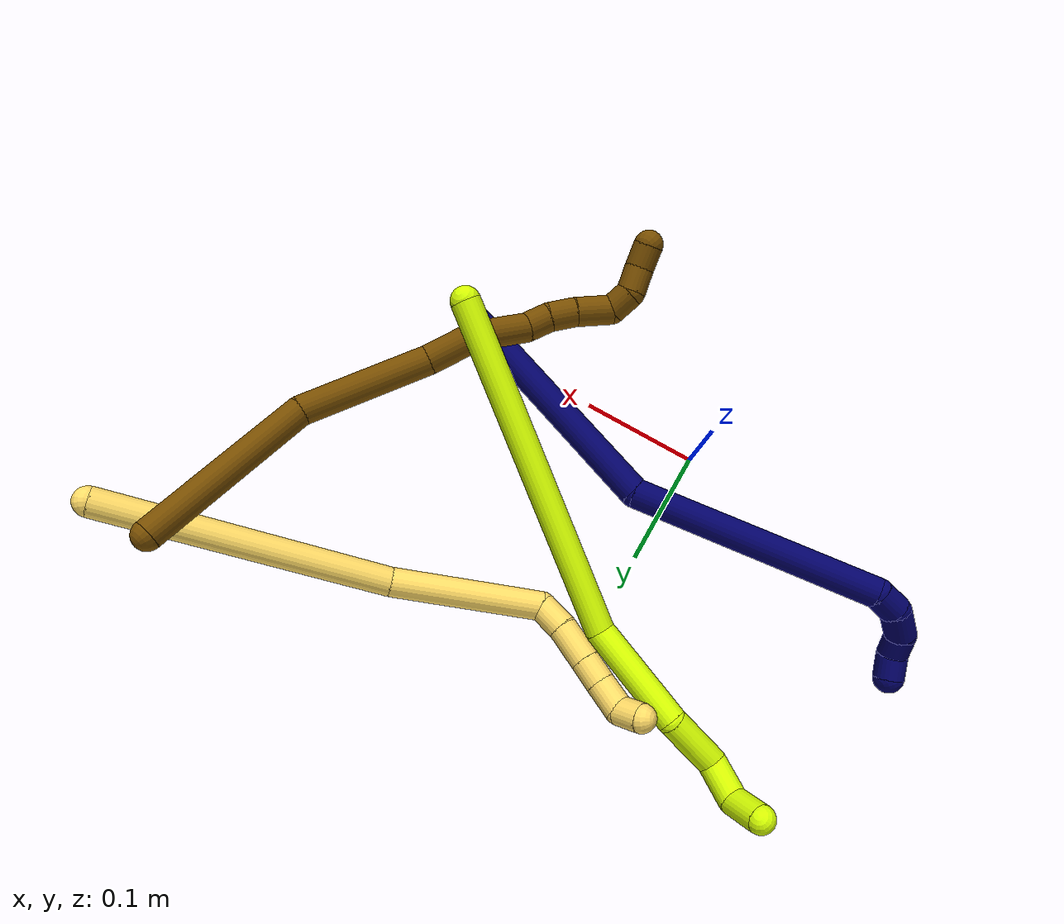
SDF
<sdf version="1.7">
 <world name="default">
  <model name="5">
   <static>0</static>
   <link name="5">
    <collision name="collision-cylinder-e_1_1_4">
     <pose>-0.061219 0.068402 -0.078086 -2.42221 -0.532835 1.25554</pose>
     <geometry><cylinder><radius>0.0125</radius><length>0.241032</length></cylinder></geometry>
     <surface>
      <friction><ode><mu>1.16</mu><mu2>1.16</mu2><slip1>0</slip1><slip2>0</slip2></ode></friction>
      <contact><ode><kp>1e+06</kp><kd>1</kd><max_vel>0</max_vel><min_depth>0.001</min_depth></ode></contact>
     </surface>
    </collision>
    <visual name="visual-cylinder-e_1_1_4">
     <pose>-0.061219 0.068402 -0.078086 -2.42221 -0.532835 1.25554</pose>
     <geometry><cylinder><radius>0.0125</radius><length>0.241032</length></cylinder></geometry>
     <material><ambient>1 0.858824 0.4 1</ambient></material>
    </visual>
    <collision name="collision-cylinder-e_2_4_5">
     <pose>-0.146165 0.168975 -0.206809 -2.5756 -0.376612 1.16019</pose>
     <geometry><cylinder><radius>0.0125</radius><length>0.129026</length></cylinder></geometry>
     <surface>
      <friction><ode><mu>1.16</mu><mu2>1.16</mu2><slip1>0</slip1><slip2>0</slip2></ode></friction>
      <contact><ode><kp>1e+06</kp><kd>1</kd><max_vel>0</max_vel><min_depth>0.001</min_depth></ode></contact>
     </surface>
    </collision>
    <visual name="visual-cylinder-e_2_4_5">
     <pose>-0.146165 0.168975 -0.206809 -2.5756 -0.376612 1.16019</pose>
     <geometry><cylinder><radius>0.0125</radius><length>0.129026</length></cylinder></geometry>
     <material><ambient>1 0.858824 0.4 1</ambient></material>
    </visual>
    <collision name="collision-cylinder-e_3_5_6">
     <pose>-0.178456 0.198989 -0.266931 2.91805 -0.721868 -2.56356</pose>
     <geometry><cylinder><radius>0.0125</radius><length>0.025923</length></cylinder></geometry>
     <surface>
      <friction><ode><mu>1.16</mu><mu2>1.16</mu2><slip1>0</slip1><slip2>0</slip2></ode></friction>
      <contact><ode><kp>1e+06</kp><kd>1</kd><max_vel>0</max_vel><min_depth>0.001</min_depth></ode></contact>
     </surface>
    </collision>
    <visual name="visual-cylinder-e_3_5_6">
     <pose>-0.178456 0.198989 -0.266931 2.91805 -0.721868 -2.56356</pose>
     <geometry><cylinder><radius>0.0125</radius><length>0.025923</length></cylinder></geometry>
     <material><ambient>1 0.858824 0.4 1</ambient></material>
    </visual>
    <collision name="collision-cylinder-e_4_6_7">
     <pose>-0.199119 0.192337 -0.286864 2.73515 -0.816352 -2.25225</pose>
     <geometry><cylinder><radius>0.0125</radius><length>0.033209</length></cylinder></geometry>
     <surface>
      <friction><ode><mu>1.16</mu><mu2>1.16</mu2><slip1>0</slip1><slip2>0</slip2></ode></friction>
      <contact><ode><kp>1e+06</kp><kd>1</kd><max_vel>0</max_vel><min_depth>0.001</min_depth></ode></contact>
     </surface>
    </collision>
    <visual name="visual-cylinder-e_4_6_7">
     <pose>-0.199119 0.192337 -0.286864 2.73515 -0.816352 -2.25225</pose>
     <geometry><cylinder><radius>0.0125</radius><length>0.033209</length></cylinder></geometry>
     <material><ambient>1 0.858824 0.4 1</ambient></material>
    </visual>
    <collision name="collision-cylinder-e_5_7_8">
     <pose>-0.219642 0.184731 -0.304443 2.73056 -0.825023 -2.2525</pose>
     <geometry><cylinder><radius>0.0125</radius><length>0.022935</length></cylinder></geometry>
     <surface>
      <friction><ode><mu>1.16</mu><mu2>1.16</mu2><slip1>0</slip1><slip2>0</slip2></ode></friction>
      <contact><ode><kp>1e+06</kp><kd>1</kd><max_vel>0</max_vel><min_depth>0.001</min_depth></ode></contact>
     </surface>
    </collision>
    <visual name="visual-cylinder-e_5_7_8">
     <pose>-0.219642 0.184731 -0.304443 2.73056 -0.825023 -2.2525</pose>
     <geometry><cylinder><radius>0.0125</radius><length>0.022935</length></cylinder></geometry>
     <material><ambient>1 0.858824 0.4 1</ambient></material>
    </visual>
    <collision name="collision-cylinder-e_6_8_9">
     <pose>-0.236789 0.176961 -0.320517 2.66105 -0.713183 -1.97805</pose>
     <geometry><cylinder><radius>0.0125</radius><length>0.026665</length></cylinder></geometry>
     <surface>
      <friction><ode><mu>1.16</mu><mu2>1.16</mu2><slip1>0</slip1><slip2>0</slip2></ode></friction>
      <contact><ode><kp>1e+06</kp><kd>1</kd><max_vel>0</max_vel><min_depth>0.001</min_depth></ode></contact>
     </surface>
    </collision>
    <visual name="visual-cylinder-e_6_8_9">
     <pose>-0.236789 0.176961 -0.320517 2.66105 -0.713183 -1.97805</pose>
     <geometry><cylinder><radius>0.0125</radius><length>0.026665</length></cylinder></geometry>
     <material><ambient>1 0.858824 0.4 1</ambient></material>
    </visual>
    <collision name="collision-cylinder-e_7_9_2">
     <pose>-0.246569 0.170126 -0.339784 2.9341 -0.099879 -0.895104</pose>
     <geometry><cylinder><radius>0.0125</radius><length>0.021209</length></cylinder></geometry>
     <surface>
      <friction><ode><mu>1.16</mu><mu2>1.16</mu2><slip1>0</slip1><slip2>0</slip2></ode></friction>
      <contact><ode><kp>1e+06</kp><kd>1</kd><max_vel>0</max_vel><min_depth>0.001</min_depth></ode></contact>
     </surface>
    </collision>
    <visual name="visual-cylinder-e_7_9_2">
     <pose>-0.246569 0.170126 -0.339784 2.9341 -0.099879 -0.895104</pose>
     <geometry><cylinder><radius>0.0125</radius><length>0.021209</length></cylinder></geometry>
     <material><ambient>1 0.858824 0.4 1</ambient></material>
    </visual>
    <collision name="collision-sphere-2">
     <pose>-0.247627 0.167953 -0.350109 0 -0 0</pose>
     <geometry><sphere><radius>0.0125</radius></sphere></geometry>
     <surface>
      <friction><ode><mu>1.16</mu><mu2>1.16</mu2><slip1>0</slip1><slip2>0</slip2></ode></friction>
      <contact><ode><kp>1e+06</kp><kd>1</kd><max_vel>0</max_vel><min_depth>0.001</min_depth></ode></contact>
     </surface>
    </collision>
    <visual name="visual-sphere-2">
     <pose>-0.247627 0.167953 -0.350109 0 -0 0</pose>
     <geometry><sphere><radius>0.0125</radius></sphere></geometry>
     <material><ambient>1 0.858824 0.4 1</ambient></material>
    </visual>
    <collision name="collision-sphere-9">
     <pose>-0.245512 0.1723 -0.329458 0 -0 0</pose>
     <geometry><sphere><radius>0.0125</radius></sphere></geometry>
     <surface>
      <friction><ode><mu>1.16</mu><mu2>1.16</mu2><slip1>0</slip1><slip2>0</slip2></ode></friction>
      <contact><ode><kp>1e+06</kp><kd>1</kd><max_vel>0</max_vel><min_depth>0.001</min_depth></ode></contact>
     </surface>
    </collision>
    <visual name="visual-sphere-9">
     <pose>-0.245512 0.1723 -0.329458 0 -0 0</pose>
     <geometry><sphere><radius>0.0125</radius></sphere></geometry>
     <material><ambient>1 0.858824 0.4 1</ambient></material>
    </visual>
    <collision name="collision-sphere-4">
     <pose>-0.122439 0.136804 -0.156172 0 -0 0</pose>
     <geometry><sphere><radius>0.0125</radius></sphere></geometry>
     <surface>
      <friction><ode><mu>1.16</mu><mu2>1.16</mu2><slip1>0</slip1><slip2>0</slip2></ode></friction>
      <contact><ode><kp>1e+06</kp><kd>1</kd><max_vel>0</max_vel><min_depth>0.001</min_depth></ode></contact>
     </surface>
    </collision>
    <visual name="visual-sphere-4">
     <pose>-0.122439 0.136804 -0.156172 0 -0 0</pose>
     <geometry><sphere><radius>0.0125</radius></sphere></geometry>
     <material><ambient>1 0.858824 0.4 1</ambient></material>
    </visual>
    <collision name="collision-sphere-1">
     <geometry><sphere><radius>0.0125</radius></sphere></geometry>
     <surface>
      <friction><ode><mu>1.16</mu><mu2>1.16</mu2><slip1>0</slip1><slip2>0</slip2></ode></friction>
      <contact><ode><kp>1e+06</kp><kd>1</kd><max_vel>0</max_vel><min_depth>0.001</min_depth></ode></contact>
     </surface>
    </collision>
    <visual name="visual-sphere-1">
     <geometry><sphere><radius>0.0125</radius></sphere></geometry>
     <material><ambient>1 0.858824 0.4 1</ambient></material>
    </visual>
    <collision name="collision-sphere-8">
     <pose>-0.228066 0.181622 -0.311576 0 -0 0</pose>
     <geometry><sphere><radius>0.0125</radius></sphere></geometry>
     <surface>
      <friction><ode><mu>1.16</mu><mu2>1.16</mu2><slip1>0</slip1><slip2>0</slip2></ode></friction>
      <contact><ode><kp>1e+06</kp><kd>1</kd><max_vel>0</max_vel><min_depth>0.001</min_depth></ode></contact>
     </surface>
    </collision>
    <visual name="visual-sphere-8">
     <pose>-0.228066 0.181622 -0.311576 0 -0 0</pose>
     <geometry><sphere><radius>0.0125</radius></sphere></geometry>
     <material><ambient>1 0.858824 0.4 1</ambient></material>
    </visual>
    <collision name="collision-sphere-5">
     <pose>-0.169891 0.201146 -0.257445 0 -0 0</pose>
     <geometry><sphere><radius>0.0125</radius></sphere></geometry>
     <surface>
      <friction><ode><mu>1.16</mu><mu2>1.16</mu2><slip1>0</slip1><slip2>0</slip2></ode></friction>
      <contact><ode><kp>1e+06</kp><kd>1</kd><max_vel>0</max_vel><min_depth>0.001</min_depth></ode></contact>
     </surface>
    </collision>
    <visual name="visual-sphere-5">
     <pose>-0.169891 0.201146 -0.257445 0 -0 0</pose>
     <geometry><sphere><radius>0.0125</radius></sphere></geometry>
     <material><ambient>1 0.858824 0.4 1</ambient></material>
    </visual>
    <collision name="collision-sphere-6">
     <pose>-0.18702 0.196833 -0.276418 0 -0 0</pose>
     <geometry><sphere><radius>0.0125</radius></sphere></geometry>
     <surface>
      <friction><ode><mu>1.16</mu><mu2>1.16</mu2><slip1>0</slip1><slip2>0</slip2></ode></friction>
      <contact><ode><kp>1e+06</kp><kd>1</kd><max_vel>0</max_vel><min_depth>0.001</min_depth></ode></contact>
     </surface>
    </collision>
    <visual name="visual-sphere-6">
     <pose>-0.18702 0.196833 -0.276418 0 -0 0</pose>
     <geometry><sphere><radius>0.0125</radius></sphere></geometry>
     <material><ambient>1 0.858824 0.4 1</ambient></material>
    </visual>
    <collision name="collision-sphere-7">
     <pose>-0.211218 0.187841 -0.297309 0 -0 0</pose>
     <geometry><sphere><radius>0.0125</radius></sphere></geometry>
     <surface>
      <friction><ode><mu>1.16</mu><mu2>1.16</mu2><slip1>0</slip1><slip2>0</slip2></ode></friction>
      <contact><ode><kp>1e+06</kp><kd>1</kd><max_vel>0</max_vel><min_depth>0.001</min_depth></ode></contact>
     </surface>
    </collision>
    <visual name="visual-sphere-7">
     <pose>-0.211218 0.187841 -0.297309 0 -0 0</pose>
     <geometry><sphere><radius>0.0125</radius></sphere></geometry>
     <material><ambient>1 0.858824 0.4 1</ambient></material>
    </visual>
    <inertial>
     <pose>-0.122869 0.124798 -0.169374 0 -0 0</pose>
     <mass>0.5</mass>
     <inertia>
      <ixx>0.001472</ixx>
      <ixy>0</ixy>
      <ixz>0</ixz>
      <iyy>0.001205</iyy>
      <iyz>0</iyz>
      <izz>-0.00011</izz>
     </inertia>
    </inertial>
   </link>
   <pose>0.388501 0.286272 0.106545 -2.17553 -0.47658 -0.848256</pose>
  </model>
  <model name="7">
   <static>0</static>
   <link name="7">
    <collision name="collision-cylinder-e_1_1_4">
     <pose>-0.094679 0.036784 -0.013088 -1.91263 -1.17967 1.51802</pose>
     <geometry><cylinder><radius>0.0125</radius><length>0.204827</length></cylinder></geometry>
     <surface>
      <friction><ode><mu>1.16</mu><mu2>1.16</mu2><slip1>0</slip1><slip2>0</slip2></ode></friction>
      <contact><ode><kp>1e+06</kp><kd>1</kd><max_vel>0</max_vel><min_depth>0.001</min_depth></ode></contact>
     </surface>
    </collision>
    <visual name="visual-cylinder-e_1_1_4">
     <pose>-0.094679 0.036784 -0.013088 -1.91263 -1.17967 1.51802</pose>
     <geometry><cylinder><radius>0.0125</radius><length>0.204827</length></cylinder></geometry>
     <material><ambient>0.003922 0 0.403922 1</ambient></material>
    </visual>
    <collision name="collision-cylinder-e_2_4_5">
     <pose>-0.271727 0.099891 -0.08186 -2.7 -0.928718 2.29903</pose>
     <geometry><cylinder><radius>0.0125</radius><length>0.2057</length></cylinder></geometry>
     <surface>
      <friction><ode><mu>1.16</mu><mu2>1.16</mu2><slip1>0</slip1><slip2>0</slip2></ode></friction>
      <contact><ode><kp>1e+06</kp><kd>1</kd><max_vel>0</max_vel><min_depth>0.001</min_depth></ode></contact>
     </surface>
    </collision>
    <visual name="visual-cylinder-e_2_4_5">
     <pose>-0.271727 0.099891 -0.08186 -2.7 -0.928718 2.29903</pose>
     <geometry><cylinder><radius>0.0125</radius><length>0.2057</length></cylinder></geometry>
     <material><ambient>0.003922 0 0.403922 1</ambient></material>
    </visual>
    <collision name="collision-cylinder-e_3_5_6">
     <pose>-0.36097 0.133754 -0.141298 -2.03272 -0.684683 1.04444</pose>
     <geometry><cylinder><radius>0.0125</radius><length>0.021745</length></cylinder></geometry>
     <surface>
      <friction><ode><mu>1.16</mu><mu2>1.16</mu2><slip1>0</slip1><slip2>0</slip2></ode></friction>
      <contact><ode><kp>1e+06</kp><kd>1</kd><max_vel>0</max_vel><min_depth>0.001</min_depth></ode></contact>
     </surface>
    </collision>
    <visual name="visual-cylinder-e_3_5_6">
     <pose>-0.36097 0.133754 -0.141298 -2.03272 -0.684683 1.04444</pose>
     <geometry><cylinder><radius>0.0125</radius><length>0.021745</length></cylinder></geometry>
     <material><ambient>0.003922 0 0.403922 1</ambient></material>
    </visual>
    <collision name="collision-cylinder-e_4_6_7">
     <pose>-0.372907 0.153891 -0.145169 -1.58016 -0.381971 0.385477</pose>
     <geometry><cylinder><radius>0.0125</radius><length>0.027152</length></cylinder></geometry>
     <surface>
      <friction><ode><mu>1.16</mu><mu2>1.16</mu2><slip1>0</slip1><slip2>0</slip2></ode></friction>
      <contact><ode><kp>1e+06</kp><kd>1</kd><max_vel>0</max_vel><min_depth>0.001</min_depth></ode></contact>
     </surface>
    </collision>
    <visual name="visual-cylinder-e_4_6_7">
     <pose>-0.372907 0.153891 -0.145169 -1.58016 -0.381971 0.385477</pose>
     <geometry><cylinder><radius>0.0125</radius><length>0.027152</length></cylinder></geometry>
     <material><ambient>0.003922 0 0.403922 1</ambient></material>
    </visual>
    <collision name="collision-cylinder-e_5_7_8">
     <pose>-0.379448 0.175601 -0.141135 -1.14327 -0.146812 0.094541</pose>
     <geometry><cylinder><radius>0.0125</radius><length>0.020246</length></cylinder></geometry>
     <surface>
      <friction><ode><mu>1.16</mu><mu2>1.16</mu2><slip1>0</slip1><slip2>0</slip2></ode></friction>
      <contact><ode><kp>1e+06</kp><kd>1</kd><max_vel>0</max_vel><min_depth>0.001</min_depth></ode></contact>
     </surface>
    </collision>
    <visual name="visual-cylinder-e_5_7_8">
     <pose>-0.379448 0.175601 -0.141135 -1.14327 -0.146812 0.094541</pose>
     <geometry><cylinder><radius>0.0125</radius><length>0.020246</length></cylinder></geometry>
     <material><ambient>0.003922 0 0.403922 1</ambient></material>
    </visual>
    <collision name="collision-cylinder-e_6_8_2">
     <pose>-0.386136 0.19117 -0.131107 -0.832459 -0.537765 0.242428</pose>
     <geometry><cylinder><radius>0.0125</radius><length>0.020329</length></cylinder></geometry>
     <surface>
      <friction><ode><mu>1.16</mu><mu2>1.16</mu2><slip1>0</slip1><slip2>0</slip2></ode></friction>
      <contact><ode><kp>1e+06</kp><kd>1</kd><max_vel>0</max_vel><min_depth>0.001</min_depth></ode></contact>
     </surface>
    </collision>
    <visual name="visual-cylinder-e_6_8_2">
     <pose>-0.386136 0.19117 -0.131107 -0.832459 -0.537765 0.242428</pose>
     <geometry><cylinder><radius>0.0125</radius><length>0.020329</length></cylinder></geometry>
     <material><ambient>0.003922 0 0.403922 1</ambient></material>
    </visual>
    <collision name="collision-sphere-2">
     <pose>-0.391342 0.197627 -0.125232 0 -0 0</pose>
     <geometry><sphere><radius>0.0125</radius></sphere></geometry>
     <surface>
      <friction><ode><mu>1.16</mu><mu2>1.16</mu2><slip1>0</slip1><slip2>0</slip2></ode></friction>
      <contact><ode><kp>1e+06</kp><kd>1</kd><max_vel>0</max_vel><min_depth>0.001</min_depth></ode></contact>
     </surface>
    </collision>
    <visual name="visual-sphere-2">
     <pose>-0.391342 0.197627 -0.125232 0 -0 0</pose>
     <geometry><sphere><radius>0.0125</radius></sphere></geometry>
     <material><ambient>0.003922 0 0.403922 1</ambient></material>
    </visual>
    <collision name="collision-sphere-4">
     <pose>-0.189359 0.073568 -0.026175 0 -0 0</pose>
     <geometry><sphere><radius>0.0125</radius></sphere></geometry>
     <surface>
      <friction><ode><mu>1.16</mu><mu2>1.16</mu2><slip1>0</slip1><slip2>0</slip2></ode></friction>
      <contact><ode><kp>1e+06</kp><kd>1</kd><max_vel>0</max_vel><min_depth>0.001</min_depth></ode></contact>
     </surface>
    </collision>
    <visual name="visual-sphere-4">
     <pose>-0.189359 0.073568 -0.026175 0 -0 0</pose>
     <geometry><sphere><radius>0.0125</radius></sphere></geometry>
     <material><ambient>0.003922 0 0.403922 1</ambient></material>
    </visual>
    <collision name="collision-sphere-1">
     <geometry><sphere><radius>0.0125</radius></sphere></geometry>
     <surface>
      <friction><ode><mu>1.16</mu><mu2>1.16</mu2><slip1>0</slip1><slip2>0</slip2></ode></friction>
      <contact><ode><kp>1e+06</kp><kd>1</kd><max_vel>0</max_vel><min_depth>0.001</min_depth></ode></contact>
     </surface>
    </collision>
    <visual name="visual-sphere-1">
     <geometry><sphere><radius>0.0125</radius></sphere></geometry>
     <material><ambient>0.003922 0 0.403922 1</ambient></material>
    </visual>
    <collision name="collision-sphere-8">
     <pose>-0.380929 0.184713 -0.136983 0 -0 0</pose>
     <geometry><sphere><radius>0.0125</radius></sphere></geometry>
     <surface>
      <friction><ode><mu>1.16</mu><mu2>1.16</mu2><slip1>0</slip1><slip2>0</slip2></ode></friction>
      <contact><ode><kp>1e+06</kp><kd>1</kd><max_vel>0</max_vel><min_depth>0.001</min_depth></ode></contact>
     </surface>
    </collision>
    <visual name="visual-sphere-8">
     <pose>-0.380929 0.184713 -0.136983 0 -0 0</pose>
     <geometry><sphere><radius>0.0125</radius></sphere></geometry>
     <material><ambient>0.003922 0 0.403922 1</ambient></material>
    </visual>
    <collision name="collision-sphere-5">
     <pose>-0.354094 0.126214 -0.137544 0 -0 0</pose>
     <geometry><sphere><radius>0.0125</radius></sphere></geometry>
     <surface>
      <friction><ode><mu>1.16</mu><mu2>1.16</mu2><slip1>0</slip1><slip2>0</slip2></ode></friction>
      <contact><ode><kp>1e+06</kp><kd>1</kd><max_vel>0</max_vel><min_depth>0.001</min_depth></ode></contact>
     </surface>
    </collision>
    <visual name="visual-sphere-5">
     <pose>-0.354094 0.126214 -0.137544 0 -0 0</pose>
     <geometry><sphere><radius>0.0125</radius></sphere></geometry>
     <material><ambient>0.003922 0 0.403922 1</ambient></material>
    </visual>
    <collision name="collision-sphere-6">
     <pose>-0.367847 0.141293 -0.145051 0 -0 0</pose>
     <geometry><sphere><radius>0.0125</radius></sphere></geometry>
     <surface>
      <friction><ode><mu>1.16</mu><mu2>1.16</mu2><slip1>0</slip1><slip2>0</slip2></ode></friction>
      <contact><ode><kp>1e+06</kp><kd>1</kd><max_vel>0</max_vel><min_depth>0.001</min_depth></ode></contact>
     </surface>
    </collision>
    <visual name="visual-sphere-6">
     <pose>-0.367847 0.141293 -0.145051 0 -0 0</pose>
     <geometry><sphere><radius>0.0125</radius></sphere></geometry>
     <material><ambient>0.003922 0 0.403922 1</ambient></material>
    </visual>
    <collision name="collision-sphere-7">
     <pose>-0.377968 0.166488 -0.145287 0 -0 0</pose>
     <geometry><sphere><radius>0.0125</radius></sphere></geometry>
     <surface>
      <friction><ode><mu>1.16</mu><mu2>1.16</mu2><slip1>0</slip1><slip2>0</slip2></ode></friction>
      <contact><ode><kp>1e+06</kp><kd>1</kd><max_vel>0</max_vel><min_depth>0.001</min_depth></ode></contact>
     </surface>
    </collision>
    <visual name="visual-sphere-7">
     <pose>-0.377968 0.166488 -0.145287 0 -0 0</pose>
     <geometry><sphere><radius>0.0125</radius></sphere></geometry>
     <material><ambient>0.003922 0 0.403922 1</ambient></material>
    </visual>
    <inertial>
     <pose>-0.217588 0.085221 -0.064113 0 -0 0</pose>
     <mass>0.5</mass>
     <inertia>
      <ixx>0.000303</ixx>
      <ixy>0</ixy>
      <ixz>0</ixz>
      <iyy>0.00187</iyy>
      <iyz>0</iyz>
      <izz>0.000796</izz>
     </inertia>
    </inertial>
   </link>
   <pose>0.21873 -0.010246 0.026221 -1.4597 0.499261 -0.447663</pose>
  </model>
  <model name="12">
   <static>0</static>
   <link name="12">
    <collision name="collision-cylinder-e_1_1_4">
     <pose>0.004959 -0.009192 -0.076569 3.02211 0.064218 0.985635</pose>
     <geometry><cylinder><radius>0.0125</radius><length>0.154556</length></cylinder></geometry>
     <surface>
      <friction><ode><mu>1.16</mu><mu2>1.16</mu2><slip1>0</slip1><slip2>0</slip2></ode></friction>
      <contact><ode><kp>1e+06</kp><kd>1</kd><max_vel>0</max_vel><min_depth>0.001</min_depth></ode></contact>
     </surface>
    </collision>
    <visual name="visual-cylinder-e_1_1_4">
     <pose>0.004959 -0.009192 -0.076569 3.02211 0.064218 0.985635</pose>
     <geometry><cylinder><radius>0.0125</radius><length>0.154556</length></cylinder></geometry>
     <material><ambient>0.466667 0.301961 0 1</ambient></material>
    </visual>
    <collision name="collision-cylinder-e_2_4_5">
     <pose>0.002972 -0.0448 -0.202764 2.65246 -0.122936 -0.483582</pose>
     <geometry><cylinder><radius>0.0125</radius><length>0.113293</length></cylinder></geometry>
     <surface>
      <friction><ode><mu>1.16</mu><mu2>1.16</mu2><slip1>0</slip1><slip2>0</slip2></ode></friction>
      <contact><ode><kp>1e+06</kp><kd>1</kd><max_vel>0</max_vel><min_depth>0.001</min_depth></ode></contact>
     </surface>
    </collision>
    <visual name="visual-cylinder-e_2_4_5">
     <pose>0.002972 -0.0448 -0.202764 2.65246 -0.122936 -0.483582</pose>
     <geometry><cylinder><radius>0.0125</radius><length>0.113293</length></cylinder></geometry>
     <material><ambient>0.466667 0.301961 0 1</ambient></material>
    </visual>
    <collision name="collision-cylinder-e_3_5_6">
     <pose>-0.003489 -0.084247 -0.269986 2.50407 0.022152 0.067103</pose>
     <geometry><cylinder><radius>0.0125</radius><length>0.043803</length></cylinder></geometry>
     <surface>
      <friction><ode><mu>1.16</mu><mu2>1.16</mu2><slip1>0</slip1><slip2>0</slip2></ode></friction>
      <contact><ode><kp>1e+06</kp><kd>1</kd><max_vel>0</max_vel><min_depth>0.001</min_depth></ode></contact>
     </surface>
    </collision>
    <visual name="visual-cylinder-e_3_5_6">
     <pose>-0.003489 -0.084247 -0.269986 2.50407 0.022152 0.067103</pose>
     <geometry><cylinder><radius>0.0125</radius><length>0.043803</length></cylinder></geometry>
     <material><ambient>0.466667 0.301961 0 1</ambient></material>
    </visual>
    <collision name="collision-cylinder-e_4_6_7">
     <pose>-0.011834 -0.104383 -0.309234 2.82464 -0.369659 -1.72705</pose>
     <geometry><cylinder><radius>0.0125</radius><length>0.048879</length></cylinder></geometry>
     <surface>
      <friction><ode><mu>1.16</mu><mu2>1.16</mu2><slip1>0</slip1><slip2>0</slip2></ode></friction>
      <contact><ode><kp>1e+06</kp><kd>1</kd><max_vel>0</max_vel><min_depth>0.001</min_depth></ode></contact>
     </surface>
    </collision>
    <visual name="visual-cylinder-e_4_6_7">
     <pose>-0.011834 -0.104383 -0.309234 2.82464 -0.369659 -1.72705</pose>
     <geometry><cylinder><radius>0.0125</radius><length>0.048879</length></cylinder></geometry>
     <material><ambient>0.466667 0.301961 0 1</ambient></material>
    </visual>
    <collision name="collision-cylinder-e_5_7_8">
     <pose>-0.021097 -0.117336 -0.339903 2.56591 -0.040288 -0.135888</pose>
     <geometry><cylinder><radius>0.0125</radius><length>0.021512</length></cylinder></geometry>
     <surface>
      <friction><ode><mu>1.16</mu><mu2>1.16</mu2><slip1>0</slip1><slip2>0</slip2></ode></friction>
      <contact><ode><kp>1e+06</kp><kd>1</kd><max_vel>0</max_vel><min_depth>0.001</min_depth></ode></contact>
     </surface>
    </collision>
    <visual name="visual-cylinder-e_5_7_8">
     <pose>-0.021097 -0.117336 -0.339903 2.56591 -0.040288 -0.135888</pose>
     <geometry><cylinder><radius>0.0125</radius><length>0.021512</length></cylinder></geometry>
     <material><ambient>0.466667 0.301961 0 1</ambient></material>
    </visual>
    <collision name="collision-cylinder-e_6_8_9">
     <pose>-0.024426 -0.130194 -0.35771 2.46868 -0.252114 -0.69525</pose>
     <geometry><cylinder><radius>0.0125</radius><length>0.023219</length></cylinder></geometry>
     <surface>
      <friction><ode><mu>1.16</mu><mu2>1.16</mu2><slip1>0</slip1><slip2>0</slip2></ode></friction>
      <contact><ode><kp>1e+06</kp><kd>1</kd><max_vel>0</max_vel><min_depth>0.001</min_depth></ode></contact>
     </surface>
    </collision>
    <visual name="visual-cylinder-e_6_8_9">
     <pose>-0.024426 -0.130194 -0.35771 2.46868 -0.252114 -0.69525</pose>
     <geometry><cylinder><radius>0.0125</radius><length>0.023219</length></cylinder></geometry>
     <material><ambient>0.466667 0.301961 0 1</ambient></material>
    </visual>
    <collision name="collision-cylinder-e_7_9_10">
     <pose>-0.033085 -0.14668 -0.377729 2.44046 -0.373766 -0.954473</pose>
     <geometry><cylinder><radius>0.0125</radius><length>0.031567</length></cylinder></geometry>
     <surface>
      <friction><ode><mu>1.16</mu><mu2>1.16</mu2><slip1>0</slip1><slip2>0</slip2></ode></friction>
      <contact><ode><kp>1e+06</kp><kd>1</kd><max_vel>0</max_vel><min_depth>0.001</min_depth></ode></contact>
     </surface>
    </collision>
    <visual name="visual-cylinder-e_7_9_10">
     <pose>-0.033085 -0.14668 -0.377729 2.44046 -0.373766 -0.954473</pose>
     <geometry><cylinder><radius>0.0125</radius><length>0.031567</length></cylinder></geometry>
     <material><ambient>0.466667 0.301961 0 1</ambient></material>
    </visual>
    <collision name="collision-cylinder-e_8_10_11">
     <pose>-0.03531 -0.162965 -0.396056 2.37717 0.345383 0.818811</pose>
     <geometry><cylinder><radius>0.0125</radius><length>0.020905</length></cylinder></geometry>
     <surface>
      <friction><ode><mu>1.16</mu><mu2>1.16</mu2><slip1>0</slip1><slip2>0</slip2></ode></friction>
      <contact><ode><kp>1e+06</kp><kd>1</kd><max_vel>0</max_vel><min_depth>0.001</min_depth></ode></contact>
     </surface>
    </collision>
    <visual name="visual-cylinder-e_8_10_11">
     <pose>-0.03531 -0.162965 -0.396056 2.37717 0.345383 0.818811</pose>
     <geometry><cylinder><radius>0.0125</radius><length>0.020905</length></cylinder></geometry>
     <material><ambient>0.466667 0.301961 0 1</ambient></material>
    </visual>
    <collision name="collision-cylinder-e_9_11_12">
     <pose>-0.024779 -0.17163 -0.411365 2.91905 0.69315 2.54151</pose>
     <geometry><cylinder><radius>0.0125</radius><length>0.021886</length></cylinder></geometry>
     <surface>
      <friction><ode><mu>1.16</mu><mu2>1.16</mu2><slip1>0</slip1><slip2>0</slip2></ode></friction>
      <contact><ode><kp>1e+06</kp><kd>1</kd><max_vel>0</max_vel><min_depth>0.001</min_depth></ode></contact>
     </surface>
    </collision>
    <visual name="visual-cylinder-e_9_11_12">
     <pose>-0.024779 -0.17163 -0.411365 2.91905 0.69315 2.54151</pose>
     <geometry><cylinder><radius>0.0125</radius><length>0.021886</length></cylinder></geometry>
     <material><ambient>0.466667 0.301961 0 1</ambient></material>
    </visual>
    <collision name="collision-cylinder-e_10_12_2">
     <pose>-0.010523 -0.17719 -0.425689 2.59713 0.79346 1.96603</pose>
     <geometry><cylinder><radius>0.0125</radius><length>0.020381</length></cylinder></geometry>
     <surface>
      <friction><ode><mu>1.16</mu><mu2>1.16</mu2><slip1>0</slip1><slip2>0</slip2></ode></friction>
      <contact><ode><kp>1e+06</kp><kd>1</kd><max_vel>0</max_vel><min_depth>0.001</min_depth></ode></contact>
     </surface>
    </collision>
    <visual name="visual-cylinder-e_10_12_2">
     <pose>-0.010523 -0.17719 -0.425689 2.59713 0.79346 1.96603</pose>
     <geometry><cylinder><radius>0.0125</radius><length>0.020381</length></cylinder></geometry>
     <material><ambient>0.466667 0.301961 0 1</ambient></material>
    </visual>
    <collision name="collision-sphere-2">
     <pose>-0.003259 -0.180893 -0.431803 0 -0 0</pose>
     <geometry><sphere><radius>0.0125</radius></sphere></geometry>
     <surface>
      <friction><ode><mu>1.16</mu><mu2>1.16</mu2><slip1>0</slip1><slip2>0</slip2></ode></friction>
      <contact><ode><kp>1e+06</kp><kd>1</kd><max_vel>0</max_vel><min_depth>0.001</min_depth></ode></contact>
     </surface>
    </collision>
    <visual name="visual-sphere-2">
     <pose>-0.003259 -0.180893 -0.431803 0 -0 0</pose>
     <geometry><sphere><radius>0.0125</radius></sphere></geometry>
     <material><ambient>0.466667 0.301961 0 1</ambient></material>
    </visual>
    <collision name="collision-sphere-12">
     <pose>-0.017786 -0.173488 -0.419575 0 -0 0</pose>
     <geometry><sphere><radius>0.0125</radius></sphere></geometry>
     <surface>
      <friction><ode><mu>1.16</mu><mu2>1.16</mu2><slip1>0</slip1><slip2>0</slip2></ode></friction>
      <contact><ode><kp>1e+06</kp><kd>1</kd><max_vel>0</max_vel><min_depth>0.001</min_depth></ode></contact>
     </surface>
    </collision>
    <visual name="visual-sphere-12">
     <pose>-0.017786 -0.173488 -0.419575 0 -0 0</pose>
     <geometry><sphere><radius>0.0125</radius></sphere></geometry>
     <material><ambient>0.466667 0.301961 0 1</ambient></material>
    </visual>
    <collision name="collision-sphere-11">
     <pose>-0.031771 -0.169773 -0.403154 0 -0 0</pose>
     <geometry><sphere><radius>0.0125</radius></sphere></geometry>
     <surface>
      <friction><ode><mu>1.16</mu><mu2>1.16</mu2><slip1>0</slip1><slip2>0</slip2></ode></friction>
      <contact><ode><kp>1e+06</kp><kd>1</kd><max_vel>0</max_vel><min_depth>0.001</min_depth></ode></contact>
     </surface>
    </collision>
    <visual name="visual-sphere-11">
     <pose>-0.031771 -0.169773 -0.403154 0 -0 0</pose>
     <geometry><sphere><radius>0.0125</radius></sphere></geometry>
     <material><ambient>0.466667 0.301961 0 1</ambient></material>
    </visual>
    <collision name="collision-sphere-10">
     <pose>-0.038848 -0.156158 -0.388957 0 -0 0</pose>
     <geometry><sphere><radius>0.0125</radius></sphere></geometry>
     <surface>
      <friction><ode><mu>1.16</mu><mu2>1.16</mu2><slip1>0</slip1><slip2>0</slip2></ode></friction>
      <contact><ode><kp>1e+06</kp><kd>1</kd><max_vel>0</max_vel><min_depth>0.001</min_depth></ode></contact>
     </surface>
    </collision>
    <visual name="visual-sphere-10">
     <pose>-0.038848 -0.156158 -0.388957 0 -0 0</pose>
     <geometry><sphere><radius>0.0125</radius></sphere></geometry>
     <material><ambient>0.466667 0.301961 0 1</ambient></material>
    </visual>
    <collision name="collision-sphere-9">
     <pose>-0.027322 -0.137201 -0.366501 0 -0 0</pose>
     <geometry><sphere><radius>0.0125</radius></sphere></geometry>
     <surface>
      <friction><ode><mu>1.16</mu><mu2>1.16</mu2><slip1>0</slip1><slip2>0</slip2></ode></friction>
      <contact><ode><kp>1e+06</kp><kd>1</kd><max_vel>0</max_vel><min_depth>0.001</min_depth></ode></contact>
     </surface>
    </collision>
    <visual name="visual-sphere-9">
     <pose>-0.027322 -0.137201 -0.366501 0 -0 0</pose>
     <geometry><sphere><radius>0.0125</radius></sphere></geometry>
     <material><ambient>0.466667 0.301961 0 1</ambient></material>
    </visual>
    <collision name="collision-sphere-4">
     <pose>0.009918 -0.018385 -0.153137 0 -0 0</pose>
     <geometry><sphere><radius>0.0125</radius></sphere></geometry>
     <surface>
      <friction><ode><mu>1.16</mu><mu2>1.16</mu2><slip1>0</slip1><slip2>0</slip2></ode></friction>
      <contact><ode><kp>1e+06</kp><kd>1</kd><max_vel>0</max_vel><min_depth>0.001</min_depth></ode></contact>
     </surface>
    </collision>
    <visual name="visual-sphere-4">
     <pose>0.009918 -0.018385 -0.153137 0 -0 0</pose>
     <geometry><sphere><radius>0.0125</radius></sphere></geometry>
     <material><ambient>0.466667 0.301961 0 1</ambient></material>
    </visual>
    <collision name="collision-sphere-1">
     <geometry><sphere><radius>0.0125</radius></sphere></geometry>
     <surface>
      <friction><ode><mu>1.16</mu><mu2>1.16</mu2><slip1>0</slip1><slip2>0</slip2></ode></friction>
      <contact><ode><kp>1e+06</kp><kd>1</kd><max_vel>0</max_vel><min_depth>0.001</min_depth></ode></contact>
     </surface>
    </collision>
    <visual name="visual-sphere-1">
     <geometry><sphere><radius>0.0125</radius></sphere></geometry>
     <material><ambient>0.466667 0.301961 0 1</ambient></material>
    </visual>
    <collision name="collision-sphere-8">
     <pose>-0.02153 -0.123187 -0.348918 0 -0 0</pose>
     <geometry><sphere><radius>0.0125</radius></sphere></geometry>
     <surface>
      <friction><ode><mu>1.16</mu><mu2>1.16</mu2><slip1>0</slip1><slip2>0</slip2></ode></friction>
      <contact><ode><kp>1e+06</kp><kd>1</kd><max_vel>0</max_vel><min_depth>0.001</min_depth></ode></contact>
     </surface>
    </collision>
    <visual name="visual-sphere-8">
     <pose>-0.02153 -0.123187 -0.348918 0 -0 0</pose>
     <geometry><sphere><radius>0.0125</radius></sphere></geometry>
     <material><ambient>0.466667 0.301961 0 1</ambient></material>
    </visual>
    <collision name="collision-sphere-5">
     <pose>-0.003974 -0.071215 -0.252391 0 -0 0</pose>
     <geometry><sphere><radius>0.0125</radius></sphere></geometry>
     <surface>
      <friction><ode><mu>1.16</mu><mu2>1.16</mu2><slip1>0</slip1><slip2>0</slip2></ode></friction>
      <contact><ode><kp>1e+06</kp><kd>1</kd><max_vel>0</max_vel><min_depth>0.001</min_depth></ode></contact>
     </surface>
    </collision>
    <visual name="visual-sphere-5">
     <pose>-0.003974 -0.071215 -0.252391 0 -0 0</pose>
     <geometry><sphere><radius>0.0125</radius></sphere></geometry>
     <material><ambient>0.466667 0.301961 0 1</ambient></material>
    </visual>
    <collision name="collision-sphere-6">
     <pose>-0.003004 -0.09728 -0.287581 0 -0 0</pose>
     <geometry><sphere><radius>0.0125</radius></sphere></geometry>
     <surface>
      <friction><ode><mu>1.16</mu><mu2>1.16</mu2><slip1>0</slip1><slip2>0</slip2></ode></friction>
      <contact><ode><kp>1e+06</kp><kd>1</kd><max_vel>0</max_vel><min_depth>0.001</min_depth></ode></contact>
     </surface>
    </collision>
    <visual name="visual-sphere-6">
     <pose>-0.003004 -0.09728 -0.287581 0 -0 0</pose>
     <geometry><sphere><radius>0.0125</radius></sphere></geometry>
     <material><ambient>0.466667 0.301961 0 1</ambient></material>
    </visual>
    <collision name="collision-sphere-7">
     <pose>-0.020664 -0.111485 -0.330888 0 -0 0</pose>
     <geometry><sphere><radius>0.0125</radius></sphere></geometry>
     <surface>
      <friction><ode><mu>1.16</mu><mu2>1.16</mu2><slip1>0</slip1><slip2>0</slip2></ode></friction>
      <contact><ode><kp>1e+06</kp><kd>1</kd><max_vel>0</max_vel><min_depth>0.001</min_depth></ode></contact>
     </surface>
    </collision>
    <visual name="visual-sphere-7">
     <pose>-0.020664 -0.111485 -0.330888 0 -0 0</pose>
     <geometry><sphere><radius>0.0125</radius></sphere></geometry>
     <material><ambient>0.466667 0.301961 0 1</ambient></material>
    </visual>
    <inertial>
     <pose>-0.006377 -0.072481 -0.230494 0 -0 0</pose>
     <mass>0.5</mass>
     <inertia>
      <ixx>0.000486</ixx>
      <ixy>0</ixy>
      <ixz>0</ixz>
      <iyy>-9.3e-05</iyy>
      <iyz>0</iyz>
      <izz>7.6e-05</izz>
     </inertia>
    </inertial>
   </link>
   <pose>0.331731 0.285245 0.116208 -1.0344 -0.654386 -0.552527</pose>
  </model>
  <model name="15">
   <static>0</static>
   <link name="15">
    <collision name="collision-cylinder-e_1_1_4">
     <pose>-0.107503 -0.003619 0.097043 0.037273 -0.836144 -0.016561</pose>
     <geometry><cylinder><radius>0.0125</radius><length>0.28974</length></cylinder></geometry>
     <surface>
      <friction><ode><mu>1.16</mu><mu2>1.16</mu2><slip1>0</slip1><slip2>0</slip2></ode></friction>
      <contact><ode><kp>1e+06</kp><kd>1</kd><max_vel>0</max_vel><min_depth>0.001</min_depth></ode></contact>
     </surface>
    </collision>
    <visual name="visual-cylinder-e_1_1_4">
     <pose>-0.107503 -0.003619 0.097043 0.037273 -0.836144 -0.016561</pose>
     <geometry><cylinder><radius>0.0125</radius><length>0.28974</length></cylinder></geometry>
     <material><ambient>0.835294 1 0 1</ambient></material>
    </visual>
    <collision name="collision-cylinder-e_2_4_5">
     <pose>-0.254936 0.006192 0.213159 -0.613486 -1.04208 0.359655</pose>
     <geometry><cylinder><radius>0.0125</radius><length>0.092489</length></cylinder></geometry>
     <surface>
      <friction><ode><mu>1.16</mu><mu2>1.16</mu2><slip1>0</slip1><slip2>0</slip2></ode></friction>
      <contact><ode><kp>1e+06</kp><kd>1</kd><max_vel>0</max_vel><min_depth>0.001</min_depth></ode></contact>
     </surface>
    </collision>
    <visual name="visual-cylinder-e_2_4_5">
     <pose>-0.254936 0.006192 0.213159 -0.613486 -1.04208 0.359655</pose>
     <geometry><cylinder><radius>0.0125</radius><length>0.092489</length></cylinder></geometry>
     <material><ambient>0.835294 1 0 1</ambient></material>
    </visual>
    <collision name="collision-cylinder-e_3_5_6">
     <pose>-0.309946 0.027626 0.251816 -0.387967 -0.619247 0.125531</pose>
     <geometry><cylinder><radius>0.0125</radius><length>0.051961</length></cylinder></geometry>
     <surface>
      <friction><ode><mu>1.16</mu><mu2>1.16</mu2><slip1>0</slip1><slip2>0</slip2></ode></friction>
      <contact><ode><kp>1e+06</kp><kd>1</kd><max_vel>0</max_vel><min_depth>0.001</min_depth></ode></contact>
     </surface>
    </collision>
    <visual name="visual-cylinder-e_3_5_6">
     <pose>-0.309946 0.027626 0.251816 -0.387967 -0.619247 0.125531</pose>
     <geometry><cylinder><radius>0.0125</radius><length>0.051961</length></cylinder></geometry>
     <material><ambient>0.835294 1 0 1</ambient></material>
    </visual>
    <collision name="collision-cylinder-e_4_6_7">
     <pose>-0.341768 0.037878 0.274738 -0.592872 -1.33489 0.472443</pose>
     <geometry><cylinder><radius>0.0125</radius><length>0.034439</length></cylinder></geometry>
     <surface>
      <friction><ode><mu>1.16</mu><mu2>1.16</mu2><slip1>0</slip1><slip2>0</slip2></ode></friction>
      <contact><ode><kp>1e+06</kp><kd>1</kd><max_vel>0</max_vel><min_depth>0.001</min_depth></ode></contact>
     </surface>
    </collision>
    <visual name="visual-cylinder-e_4_6_7">
     <pose>-0.341768 0.037878 0.274738 -0.592872 -1.33489 0.472443</pose>
     <geometry><cylinder><radius>0.0125</radius><length>0.034439</length></cylinder></geometry>
     <material><ambient>0.835294 1 0 1</ambient></material>
    </visual>
    <collision name="collision-cylinder-e_5_7_2">
     <pose>-0.370701 0.047584 0.271609 -2.28519 -0.89014 1.61481</pose>
     <geometry><cylinder><radius>0.0125</radius><length>0.031371</length></cylinder></geometry>
     <surface>
      <friction><ode><mu>1.16</mu><mu2>1.16</mu2><slip1>0</slip1><slip2>0</slip2></ode></friction>
      <contact><ode><kp>1e+06</kp><kd>1</kd><max_vel>0</max_vel><min_depth>0.001</min_depth></ode></contact>
     </surface>
    </collision>
    <visual name="visual-cylinder-e_5_7_2">
     <pose>-0.370701 0.047584 0.271609 -2.28519 -0.89014 1.61481</pose>
     <geometry><cylinder><radius>0.0125</radius><length>0.031371</length></cylinder></geometry>
     <material><ambient>0.835294 1 0 1</ambient></material>
    </visual>
    <collision name="collision-sphere-2">
     <pose>-0.382891 0.055041 0.265142 0 -0 0</pose>
     <geometry><sphere><radius>0.0125</radius></sphere></geometry>
     <surface>
      <friction><ode><mu>1.16</mu><mu2>1.16</mu2><slip1>0</slip1><slip2>0</slip2></ode></friction>
      <contact><ode><kp>1e+06</kp><kd>1</kd><max_vel>0</max_vel><min_depth>0.001</min_depth></ode></contact>
     </surface>
    </collision>
    <visual name="visual-sphere-2">
     <pose>-0.382891 0.055041 0.265142 0 -0 0</pose>
     <geometry><sphere><radius>0.0125</radius></sphere></geometry>
     <material><ambient>0.835294 1 0 1</ambient></material>
    </visual>
    <collision name="collision-sphere-7">
     <pose>-0.358511 0.040127 0.278076 0 -0 0</pose>
     <geometry><sphere><radius>0.0125</radius></sphere></geometry>
     <surface>
      <friction><ode><mu>1.16</mu><mu2>1.16</mu2><slip1>0</slip1><slip2>0</slip2></ode></friction>
      <contact><ode><kp>1e+06</kp><kd>1</kd><max_vel>0</max_vel><min_depth>0.001</min_depth></ode></contact>
     </surface>
    </collision>
    <visual name="visual-sphere-7">
     <pose>-0.358511 0.040127 0.278076 0 -0 0</pose>
     <geometry><sphere><radius>0.0125</radius></sphere></geometry>
     <material><ambient>0.835294 1 0 1</ambient></material>
    </visual>
    <collision name="collision-sphere-6">
     <pose>-0.325025 0.035629 0.2714 0 -0 0</pose>
     <geometry><sphere><radius>0.0125</radius></sphere></geometry>
     <surface>
      <friction><ode><mu>1.16</mu><mu2>1.16</mu2><slip1>0</slip1><slip2>0</slip2></ode></friction>
      <contact><ode><kp>1e+06</kp><kd>1</kd><max_vel>0</max_vel><min_depth>0.001</min_depth></ode></contact>
     </surface>
    </collision>
    <visual name="visual-sphere-6">
     <pose>-0.325025 0.035629 0.2714 0 -0 0</pose>
     <geometry><sphere><radius>0.0125</radius></sphere></geometry>
     <material><ambient>0.835294 1 0 1</ambient></material>
    </visual>
    <collision name="collision-sphere-5">
     <pose>-0.294866 0.019622 0.232232 0 -0 0</pose>
     <geometry><sphere><radius>0.0125</radius></sphere></geometry>
     <surface>
      <friction><ode><mu>1.16</mu><mu2>1.16</mu2><slip1>0</slip1><slip2>0</slip2></ode></friction>
      <contact><ode><kp>1e+06</kp><kd>1</kd><max_vel>0</max_vel><min_depth>0.001</min_depth></ode></contact>
     </surface>
    </collision>
    <visual name="visual-sphere-5">
     <pose>-0.294866 0.019622 0.232232 0 -0 0</pose>
     <geometry><sphere><radius>0.0125</radius></sphere></geometry>
     <material><ambient>0.835294 1 0 1</ambient></material>
    </visual>
    <collision name="collision-sphere-1">
     <geometry><sphere><radius>0.0125</radius></sphere></geometry>
     <surface>
      <friction><ode><mu>1.16</mu><mu2>1.16</mu2><slip1>0</slip1><slip2>0</slip2></ode></friction>
      <contact><ode><kp>1e+06</kp><kd>1</kd><max_vel>0</max_vel><min_depth>0.001</min_depth></ode></contact>
     </surface>
    </collision>
    <visual name="visual-sphere-1">
     <geometry><sphere><radius>0.0125</radius></sphere></geometry>
     <material><ambient>0.835294 1 0 1</ambient></material>
    </visual>
    <collision name="collision-sphere-4">
     <pose>-0.215005 -0.007238 0.194086 0 -0 0</pose>
     <geometry><sphere><radius>0.0125</radius></sphere></geometry>
     <surface>
      <friction><ode><mu>1.16</mu><mu2>1.16</mu2><slip1>0</slip1><slip2>0</slip2></ode></friction>
      <contact><ode><kp>1e+06</kp><kd>1</kd><max_vel>0</max_vel><min_depth>0.001</min_depth></ode></contact>
     </surface>
    </collision>
    <visual name="visual-sphere-4">
     <pose>-0.215005 -0.007238 0.194086 0 -0 0</pose>
     <geometry><sphere><radius>0.0125</radius></sphere></geometry>
     <material><ambient>0.835294 1 0 1</ambient></material>
    </visual>
    <inertial>
     <pose>-0.188462 0.007514 0.157798 0 -0 0</pose>
     <mass>0.5</mass>
     <inertia>
      <ixx>0.001375</ixx>
      <ixy>0</ixy>
      <ixz>0</ixz>
      <iyy>0.002121</iyy>
      <iyz>0</iyz>
      <izz>0.001633</izz>
     </inertia>
    </inertial>
   </link>
   <pose>0.219342 0.004487 0.10451 2.9188 0.443549 -0.776883</pose>
  </model>
 </world>
</sdf>
